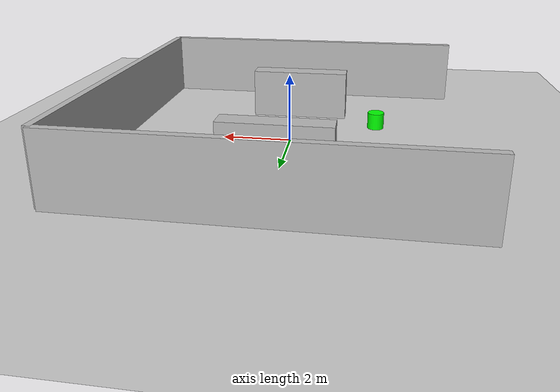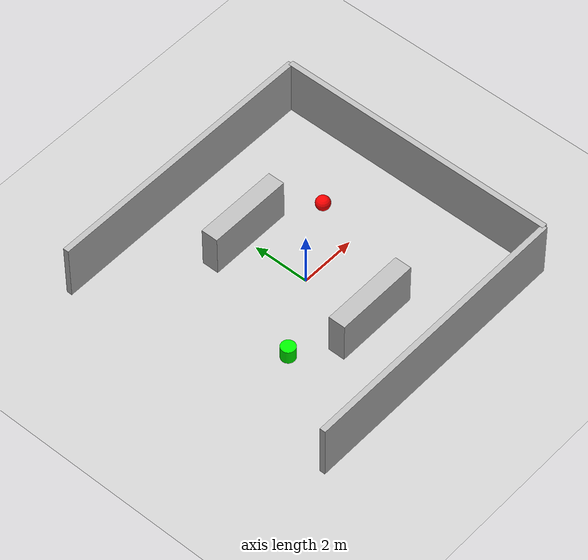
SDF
<?xml version="1.0" ?>
<sdf version="1.6">
  <world name="warehouse">

    <include>
      <uri>model://ground_plane</uri>
    </include>

    <include>
      <uri>model://sun</uri>
    </include>

    <!-- Left wall -->
    <model name="wall_left">
      <static>true</static>
      <link name="link">
        <collision name="collision">
          <geometry>
            <box>
              <size>10 0.2 2</size>
            </box>
          </geometry>
        </collision>
        <visual name="visual">
          <geometry>
            <box>
              <size>10 0.2 2</size>
            </box>
          </geometry>
        </visual>
      </link>
      <pose>0 5 1 0 0 0</pose>
    </model>

    <!-- Right wall -->
    <model name="wall_right">
      <static>true</static>
      <link name="link">
        <collision name="collision">
          <geometry>
            <box>
              <size>10 0.2 2</size>
            </box>
          </geometry>
        </collision>
        <visual name="visual">
          <geometry>
            <box>
              <size>10 0.2 2</size>
            </box>
          </geometry>
        </visual>
      </link>
      <pose>0 -5 1 0 0 0</pose>
    </model>

    <!-- Back wall -->
    <model name="wall_back">
      <static>true</static>
      <link name="link">
        <collision name="collision">
          <geometry>
            <box>
              <size>0.2 10 2</size>
            </box>
          </geometry>
        </collision>
        <visual name="visual">
          <geometry>
            <box>
              <size>0.2 10 2</size>
            </box>
          </geometry>
        </visual>
      </link>
      <pose>5 0 1 0 0 0</pose>
    </model>

    <!-- Shelf 1 -->
    <model name="shelf_1">
      <static>true</static>
      <link name="link">
        <collision name="collision">
          <geometry>
            <box>
              <size>3 0.6 1.5</size>
            </box>
          </geometry>
        </collision>
        <visual name="visual">
          <geometry>
            <box>
              <size>3 0.6 1.5</size>
            </box>
          </geometry>
        </visual>
      </link>
      <pose>0 2.5 0.75 0 0 0</pose>
    </model>

    <!-- Shelf 2 -->
    <model name="shelf_2">
      <static>true</static>
      <link name="link">
        <collision name="collision">
          <geometry>
            <box>
              <size>3 0.6 1.5</size>
            </box>
          </geometry>
        </collision>
        <visual name="visual">
          <geometry>
            <box>
              <size>3 0.6 1.5</size>
            </box>
          </geometry>
        </visual>
      </link>
      <pose>0 -2.5 0.75 0 0 0</pose>
    </model>
    <!-- ================= FIRE HAZARD ================= -->

    <model name="fire_hazard">
      <static>true</static>

      <link name="link">

        <visual name="visual">
          <geometry>
            <sphere>
              <radius>0.25</radius>
            </sphere>
          </geometry>

          <material>
            <ambient>1 0 0 1</ambient>
            <diffuse>1 0 0 1</diffuse>
            <emissive>1 0 0 1</emissive>
          </material>
        </visual>

        <collision name="collision">
          <geometry>
            <sphere>
              <radius>0.25</radius>
            </sphere>
          </geometry>
        </collision>

      </link>

      <pose>2.5 1.5 0.25 0 0 0</pose>
    </model>

    <!-- ================= GAS HAZARD ================= -->

    <model name="gas_hazard">
      <static>true</static>

      <link name="link">

        <visual name="visual">
          <geometry>
            <cylinder>
              <radius>0.25</radius>
              <length>0.5</length>
            </cylinder>
          </geometry>

          <material>
            <ambient>0 1 0 1</ambient>
            <diffuse>0 1 0 1</diffuse>
            <emissive>0 1 0 1</emissive>
          </material>
        </visual>

        <collision name="collision">
          <geometry>
            <cylinder>
              <radius>0.25</radius>
              <length>0.5</length>
            </cylinder>
          </geometry>
        </collision>

      </link>

      <pose>-2.5 -1.5 0.25 0 0 0</pose>
    </model>
  </world>
</sdf>
